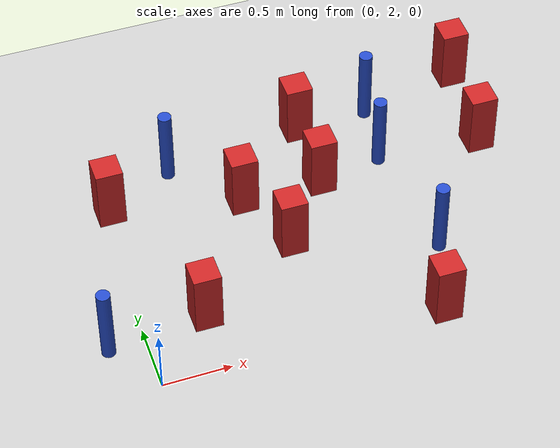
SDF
<sdf version="1.6">
 <world name="default">
  <model name="ground_plane">
   <static>1</static>
   <link name="link">
    <collision name="collision">
     <geometry><plane><normal>0 0 1</normal><size>100 100</size></plane></geometry>
     <surface><friction><ode><mu>100</mu><mu2>50</mu2></ode></friction></surface>
    </collision>
    <visual name="visual">
     <cast_shadows>0</cast_shadows>
     <geometry><plane><normal>0 0 1</normal><size>100 100</size></plane></geometry>
     <material>
      <ambient>1.0 1.0 1.0 1.0</ambient>
      <diffuse>0.8 0.8 0.8 1.0</diffuse>
      <specular>0.01 0.01 0.01 1.000000</specular>
     </material>
    </visual>
   </link>
  </model>
  <model name="pole_obstacle9">
   <static>true</static>
   <pose>2.12831113329 3.52207049719 7.38925637345e-09 -8.47170692798e-08 1.24976764939e-08 -1.74513093025e-07</pose>
   <link name="link">
    <pose>0 0 0.3 0 -0 0</pose>
    <inertial>
     <mass>1</mass>
     <inertia><ixx>0.145833</ixx><ixy>0</ixy><ixz>0</ixz><iyy>0.145833</iyy><iyz>0</iyz><izz>0.125</izz></inertia>
    </inertial>
    <collision name="collision">
     <geometry><cylinder><radius>0.05</radius><length>.6</length></cylinder></geometry>
    </collision>
    <visual name="visual">
     <geometry><cylinder><radius>0.05</radius><length>.6</length></cylinder></geometry>
     <material>
      <script><name>Gazebo/Blue</name><uri>file://media/materials/scripts/gazebo.material</uri></script>
     </material>
    </visual>
   </link>
  </model>
  <model name="pole_obstacle41">
   <static>true</static>
   <pose>2.2366368042 2.56774828889 7.38925637345e-09 -8.47170692798e-08 1.24976764939e-08 -1.74513093025e-07</pose>
   <link name="link">
    <pose>0 0 0.3 0 -0 0</pose>
    <inertial>
     <mass>1</mass>
     <inertia><ixx>0.145833</ixx><ixy>0</ixy><ixz>0</ixz><iyy>0.145833</iyy><iyz>0</iyz><izz>0.125</izz></inertia>
    </inertial>
    <collision name="collision">
     <geometry><cylinder><radius>0.05</radius><length>.6</length></cylinder></geometry>
    </collision>
    <visual name="visual">
     <geometry><cylinder><radius>0.05</radius><length>.6</length></cylinder></geometry>
     <material>
      <script><name>Gazebo/Blue</name><uri>file://media/materials/scripts/gazebo.material</uri></script>
     </material>
    </visual>
   </link>
  </model>
  <model name="square_post_obstacle40">
   <static>true</static>
   <pose>1.02761904171 3.43130359728 1.91545236811e-07 -7.35059704564e-06 1.12565212e-07 2.39332434364e-05</pose>
   <link name="link">
    <pose>0 0 0.25 0 -0 0</pose>
    <inertial>
     <mass>100</mass>
     <inertia>
      <ixx>0.166667</ixx>
      <ixy>0</ixy>
      <ixz>0</ixz>
      <iyy>0.166667</iyy>
      <iyz>0</iyz>
      <izz>0.166667</izz>
     </inertia>
    </inertial>
    <collision name="collision"><geometry><box><size>.2 .2 .5</size></box></geometry></collision>
    <visual name="visual">
     <geometry><box><size>.2 .2 .5</size></box></geometry>
     <material>
      <script><name>Gazebo/Red</name><uri>file://media/materials/scripts/gazebo.material</uri></script>
     </material>
    </visual>
   </link>
  </model>
  <model name="square_post_obstacle43">
   <static>true</static>
   <pose>0.0811977910479 3.63156764394 1.91545236811e-07 -7.35059704564e-06 1.12565212e-07 2.39332434364e-05</pose>
   <link name="link">
    <pose>0 0 0.25 0 -0 0</pose>
    <inertial>
     <mass>100</mass>
     <inertia>
      <ixx>0.166667</ixx>
      <ixy>0</ixy>
      <ixz>0</ixz>
      <iyy>0.166667</iyy>
      <iyz>0</iyz>
      <izz>0.166667</izz>
     </inertia>
    </inertial>
    <collision name="collision"><geometry><box><size>.2 .2 .5</size></box></geometry></collision>
    <visual name="visual">
     <geometry><box><size>.2 .2 .5</size></box></geometry>
     <material>
      <script><name>Gazebo/Red</name><uri>file://media/materials/scripts/gazebo.material</uri></script>
     </material>
    </visual>
   </link>
  </model>
  <model name="square_post_obstacle46">
   <static>true</static>
   <pose>2.89947783839 3.46783123335 1.91545236811e-07 -7.35059704564e-06 1.12565212e-07 2.39332434364e-05</pose>
   <link name="link">
    <pose>0 0 0.25 0 -0 0</pose>
    <inertial>
     <mass>100</mass>
     <inertia>
      <ixx>0.166667</ixx>
      <ixy>0</ixy>
      <ixz>0</ixz>
      <iyy>0.166667</iyy>
      <iyz>0</iyz>
      <izz>0.166667</izz>
     </inertia>
    </inertial>
    <collision name="collision"><geometry><box><size>.2 .2 .5</size></box></geometry></collision>
    <visual name="visual">
     <geometry><box><size>.2 .2 .5</size></box></geometry>
     <material>
      <script><name>Gazebo/Red</name><uri>file://media/materials/scripts/gazebo.material</uri></script>
     </material>
    </visual>
   </link>
  </model>
  <model name="square_post_obstacle50">
   <static>true</static>
   <pose>2.04448895842 1.99613748367 1.91545236811e-07 -7.35059704564e-06 1.12565212e-07 2.39332434364e-05</pose>
   <link name="link">
    <pose>0 0 0.25 0 -0 0</pose>
    <inertial>
     <mass>100</mass>
     <inertia>
      <ixx>0.166667</ixx>
      <ixy>0</ixy>
      <ixz>0</ixz>
      <iyy>0.166667</iyy>
      <iyz>0</iyz>
      <izz>0.166667</izz>
     </inertia>
    </inertial>
    <collision name="collision"><geometry><box><size>.2 .2 .5</size></box></geometry></collision>
    <visual name="visual">
     <geometry><box><size>.2 .2 .5</size></box></geometry>
     <material>
      <script><name>Gazebo/Red</name><uri>file://media/materials/scripts/gazebo.material</uri></script>
     </material>
    </visual>
   </link>
  </model>
  <model name="square_post_obstacle64">
   <static>true</static>
   <pose>1.64322874893 4.01217210504 1.91545236811e-07 -7.35059704564e-06 1.12565212e-07 2.39332434364e-05</pose>
   <link name="link">
    <pose>0 0 0.25 0 -0 0</pose>
    <inertial>
     <mass>100</mass>
     <inertia>
      <ixx>0.166667</ixx>
      <ixy>0</ixy>
      <ixz>0</ixz>
      <iyy>0.166667</iyy>
      <iyz>0</iyz>
      <izz>0.166667</izz>
     </inertia>
    </inertial>
    <collision name="collision"><geometry><box><size>.2 .2 .5</size></box></geometry></collision>
    <visual name="visual">
     <geometry><box><size>.2 .2 .5</size></box></geometry>
     <material>
      <script><name>Gazebo/Red</name><uri>file://media/materials/scripts/gazebo.material</uri></script>
     </material>
    </visual>
   </link>
  </model>
  <model name="pole_obstacle118">
   <static>true</static>
   <pose>-0.266246674676 2.39301318907 7.38925637345e-09 -8.471706928e-08 1.24976765139e-08 -1.74513093014e-07</pose>
   <link name="link">
    <pose>0 0 0.3 0 -0 0</pose>
    <inertial>
     <mass>1</mass>
     <inertia><ixx>0.145833</ixx><ixy>0</ixy><ixz>0</ixz><iyy>0.145833</iyy><iyz>0</iyz><izz>0.125</izz></inertia>
    </inertial>
    <collision name="collision">
     <geometry><cylinder><radius>0.05</radius><length>.6</length></cylinder></geometry>
    </collision>
    <visual name="visual">
     <geometry><cylinder><radius>0.05</radius><length>.6</length></cylinder></geometry>
     <material>
      <script><name>Gazebo/Blue</name><uri>file://media/materials/scripts/gazebo.material</uri></script>
     </material>
    </visual>
   </link>
  </model>
  <model name="pole_obstacle182">
   <static>true</static>
   <pose>2.20113438576 4.0248015241 7.38925637345e-09 -8.47170692799e-08 1.24976765036e-08 -1.74513093019e-07</pose>
   <link name="link">
    <pose>0 0 0.3 0 -0 0</pose>
    <inertial>
     <mass>1</mass>
     <inertia><ixx>0.145833</ixx><ixy>0</ixy><ixz>0</ixz><iyy>0.145833</iyy><iyz>0</iyz><izz>0.125</izz></inertia>
    </inertial>
    <collision name="collision">
     <geometry><cylinder><radius>0.05</radius><length>.6</length></cylinder></geometry>
    </collision>
    <visual name="visual">
     <geometry><cylinder><radius>0.05</radius><length>.6</length></cylinder></geometry>
     <material>
      <script><name>Gazebo/Blue</name><uri>file://media/materials/scripts/gazebo.material</uri></script>
     </material>
    </visual>
   </link>
  </model>
  <model name="square_post_obstacle174">
   <static>true</static>
   <pose>2.96708197915 4.19876967293 1.91545236811e-07 -7.35059704564e-06 1.12565212e-07 2.39332434364e-05</pose>
   <link name="link">
    <pose>0 0 0.25 0 -0 0</pose>
    <inertial>
     <mass>100</mass>
     <inertia>
      <ixx>0.166667</ixx>
      <ixy>0</ixy>
      <ixz>0</ixz>
      <iyy>0.166667</iyy>
      <iyz>0</iyz>
      <izz>0.166667</izz>
     </inertia>
    </inertial>
    <collision name="collision"><geometry><box><size>.2 .2 .5</size></box></geometry></collision>
    <visual name="visual">
     <geometry><box><size>.2 .2 .5</size></box></geometry>
     <material>
      <script><name>Gazebo/Red</name><uri>file://media/materials/scripts/gazebo.material</uri></script>
     </material>
    </visual>
   </link>
  </model>
  <model name="square_post_obstacle185">
   <static>true</static>
   <pose>0.452328931145 2.46807950232 1.91545236811e-07 -7.35059704564e-06 1.12565212e-07 2.39332434364e-05</pose>
   <link name="link">
    <pose>0 0 0.25 0 -0 0</pose>
    <inertial>
     <mass>100</mass>
     <inertia>
      <ixx>0.166667</ixx>
      <ixy>0</ixy>
      <ixz>0</ixz>
      <iyy>0.166667</iyy>
      <iyz>0</iyz>
      <izz>0.166667</izz>
     </inertia>
    </inertial>
    <collision name="collision"><geometry><box><size>.2 .2 .5</size></box></geometry></collision>
    <visual name="visual">
     <geometry><box><size>.2 .2 .5</size></box></geometry>
     <material>
      <script><name>Gazebo/Red</name><uri>file://media/materials/scripts/gazebo.material</uri></script>
     </material>
    </visual>
   </link>
  </model>
  <model name="pole_obstacle211">
   <static>true</static>
   <pose>0.595922340299 3.88736038592 7.38925637345e-09 -8.47170692799e-08 1.2497676509e-08 -1.74513093016e-07</pose>
   <link name="link">
    <pose>0 0 0.3 0 -0 0</pose>
    <inertial>
     <mass>1</mass>
     <inertia><ixx>0.145833</ixx><ixy>0</ixy><ixz>0</ixz><iyy>0.145833</iyy><iyz>0</iyz><izz>0.125</izz></inertia>
    </inertial>
    <collision name="collision">
     <geometry><cylinder><radius>0.05</radius><length>.6</length></cylinder></geometry>
    </collision>
    <visual name="visual">
     <geometry><cylinder><radius>0.05</radius><length>.6</length></cylinder></geometry>
     <material>
      <script><name>Gazebo/Blue</name><uri>file://media/materials/scripts/gazebo.material</uri></script>
     </material>
    </visual>
   </link>
  </model>
  <model name="square_post_obstacle218">
   <static>true</static>
   <pose>1.23232413054 2.92533557726 1.91545236811e-07 -7.35059704564e-06 1.12565212e-07 2.39332434364e-05</pose>
   <link name="link">
    <pose>0 0 0.25 0 -0 0</pose>
    <inertial>
     <mass>100</mass>
     <inertia>
      <ixx>0.166667</ixx>
      <ixy>0</ixy>
      <ixz>0</ixz>
      <iyy>0.166667</iyy>
      <iyz>0</iyz>
      <izz>0.166667</izz>
     </inertia>
    </inertial>
    <collision name="collision"><geometry><box><size>.2 .2 .5</size></box></geometry></collision>
    <visual name="visual">
     <geometry><box><size>.2 .2 .5</size></box></geometry>
     <material>
      <script><name>Gazebo/Red</name><uri>file://media/materials/scripts/gazebo.material</uri></script>
     </material>
    </visual>
   </link>
  </model>
  <model name="square_post_obstacle219">
   <static>true</static>
   <pose>1.62887381285 3.42778979589 1.91545236811e-07 -7.35059704564e-06 1.12565212e-07 2.39332434364e-05</pose>
   <link name="link">
    <pose>0 0 0.25 0 -0 0</pose>
    <inertial>
     <mass>100</mass>
     <inertia>
      <ixx>0.166667</ixx>
      <ixy>0</ixy>
      <ixz>0</ixz>
      <iyy>0.166667</iyy>
      <iyz>0</iyz>
      <izz>0.166667</izz>
     </inertia>
    </inertial>
    <collision name="collision"><geometry><box><size>.2 .2 .5</size></box></geometry></collision>
    <visual name="visual">
     <geometry><box><size>.2 .2 .5</size></box></geometry>
     <material>
      <script><name>Gazebo/Red</name><uri>file://media/materials/scripts/gazebo.material</uri></script>
     </material>
    </visual>
   </link>
  </model>
 </world>
</sdf>
